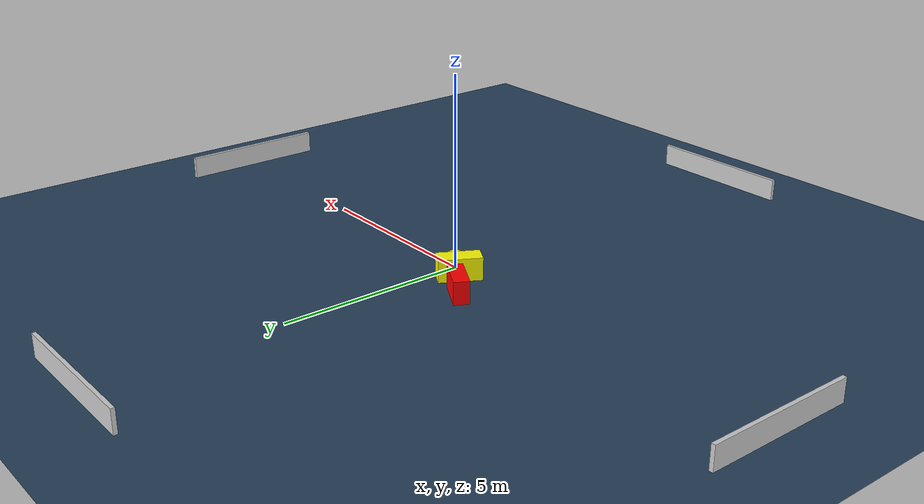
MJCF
<?xml version="1.0" ?>
<mujoco model="generated_environment">
  <option timestep="0.01" integrator="RK4" cone="elliptic"/>
  <default>
    <geom density="1"/>
  </default>
  <asset>
    <texture builtin="gradient" height="3072" name="skybox" rgb1="0.3 0.5 0.7" rgb2="0 0 0" type="skybox" width="512"/>
    <texture builtin="checker" height="300" name="groundplane" rgb1="0.2 0.3 0.4" rgb2="0.1 0.2 0.3" type="2d" width="300"/>
    <material name="groundplane" reflectance="0.2" texrepeat="5 5" texture="groundplane"/>
  </asset>
  <worldbody>
    <light dir="0 0 -1" directional="true" pos="0 0 1.5"/>
    <geom condim="3" friction="0.5 0.005 0.001" material="groundplane" name="floor" pos="0 0 0" size="0 0 0.05" type="plane"/>
    <body name="walls">
      <geom name="wall_1" condim="4" pos="-10.0 0.0 0.3" rgba="0.800000011920929 0.800000011920929 0.800000011920929 1.0" size="0.05 2.0 0.3" type="box"/>
      <geom name="wall_2" condim="4" pos="10.0 0.0 0.3" rgba="0.800000011920929 0.800000011920929 0.800000011920929 1.0" size="0.05 2.0 0.3" type="box"/>
      <geom name="wall_3" condim="4" pos="0.0 -10.0 0.3" rgba="0.800000011920929 0.800000011920929 0.800000011920929 1.0" size="2.0 0.05 0.3" type="box"/>
      <geom name="wall_4" condim="4" pos="0.0 10.0 0.3" rgba="0.800000011920929 0.800000011920929 0.800000011920929 1.0" size="2.0 0.05 0.3" type="box"/>
    </body>
    <body name="robot">
      <joint name="joint_x" type="slide" pos="0 0 0" axis="1 0 0"/>
      <joint name="joint_y" type="slide" pos="0 0 0" axis="0 1 0"/>
      <geom name="robot" type="cylinder" pos="0.0 0.0 0.2" size="0.2 0.2 0.0" mass="5.0" friction="1.0 0.005 0.0001" condim="4" rgba="1.0 1.0 0.0 1.0"/>
    </body>
    <body name="obstacle_1_movable">
      <geom name="obstacle_1_movable" condim="4" pos="-0.5160088040253138 0.30447909897341047 0.3" euler="0 0 330.5328522715255" friction="0.0 0.005 0.001" rgba="1.0 1.0 0.0 1.0" size="0.2502974754917392 0.56089066135693 0.3" type="box" mass="0.1"/>
      <joint type="free"/>
    </body>
    <body name="obstacle_2_static">
      <geom name="obstacle_2_static" condim="4" pos="-1.3034956636758448 0.9676091494422426 0.3" euler="0 0 240.53691226895373" friction="0.0 0.005 0.001" rgba="1.0 0.0 0.0 1.0" size="0.20091119596268692 0.5146229328159011 0.3" type="box"/>
    </body>
  </worldbody>
  <actuator>
    <motor name="actuator_x" joint="joint_x" gear="1" ctrlrange="-1 1"/>
    <motor name="actuator_y" joint="joint_y" gear="1" ctrlrange="-1 1"/>
  </actuator>
</mujoco>
